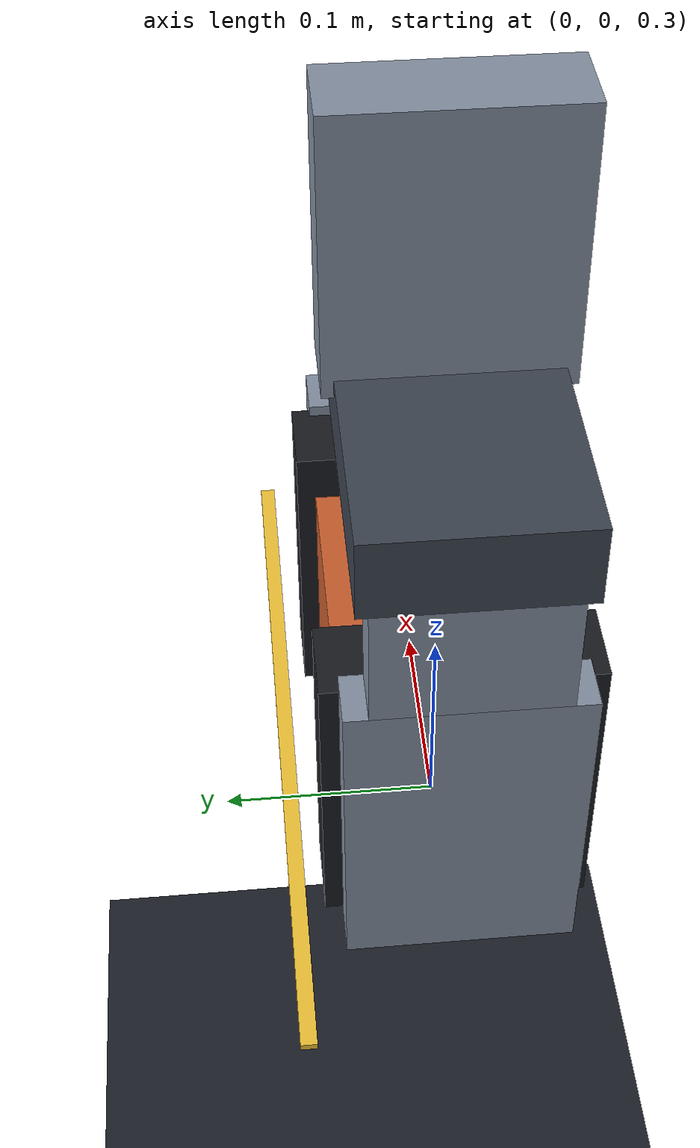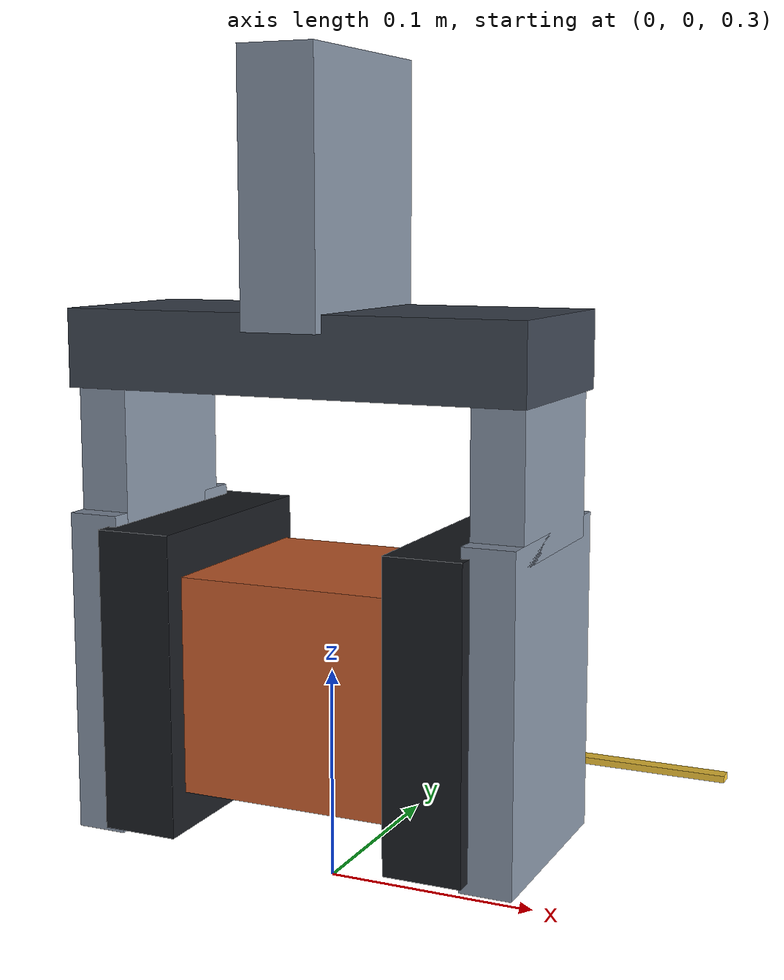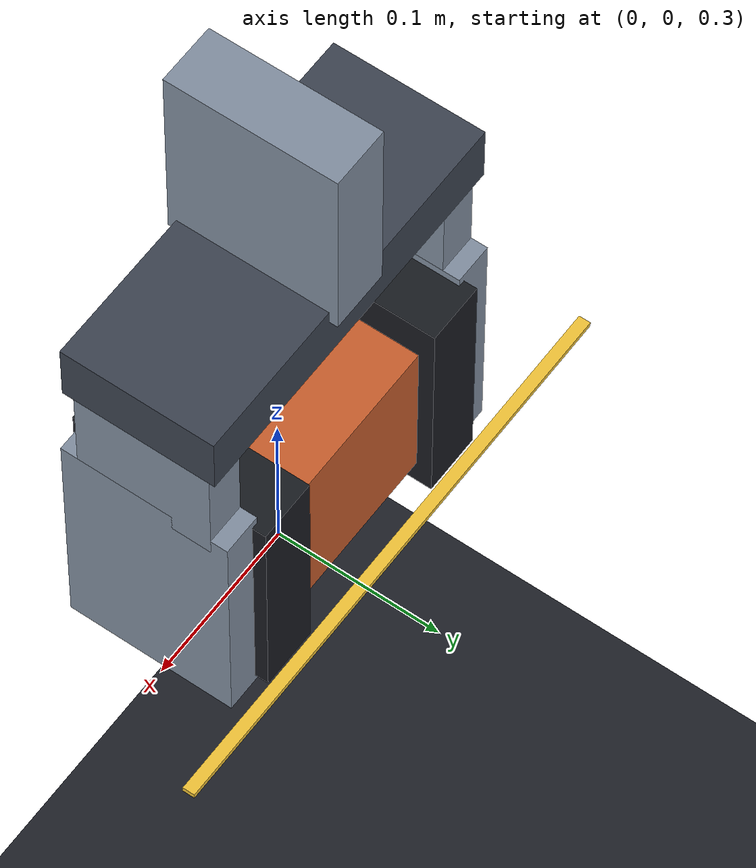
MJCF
<mujoco model="stiction_grasp">
  <option timestep="0.001" cone="elliptic" impratio="0.1">
    <flag stiction="enable"/>
  </option>

  <statistic extent="0.34" center="0 0 0.42" meansize="0.05"/>

  <visual>
    <headlight diffuse="0.35 0.35 0.4" ambient="0.18 0.18 0.22" specular="0.2 0.2 0.2"/>
    <rgba haze="0.06 0.07 0.09 1"/>
    <map fogstart="2" fogend="6" shadowclip="1.2"/>
    <quality shadowsize="8192" offsamples="8"/>
    <global azimuth="120" elevation="-14" offwidth="1920" offheight="1080"/>
    <scale jointlength="0.08" jointwidth="0.008"/>
  </visual>

  <asset>
    <texture name="skybox" type="skybox" builtin="gradient"
             rgb1="0.16 0.20 0.26" rgb2="0.03 0.035 0.05" width="512" height="512"/>
    <texture name="floortex" type="2d" builtin="checker" mark="edge" markrgb="0.10 0.11 0.13"
             rgb1="0.14 0.15 0.18" rgb2="0.10 0.11 0.14" width="512" height="512"/>
    <material name="floor" texture="floortex" texrepeat="14 14" reflectance="0.18"
              shininess="0.3" specular="0.4"/>
    <texture name="boxtex" type="cube" builtin="checker" mark="cross" markrgb="1 1 1"
             rgb1="0.86 0.42 0.20" rgb2="0.74 0.33 0.16" width="256" height="256"/>
    <material name="box" texture="boxtex" texuniform="true" texrepeat="2 2"
              reflectance="0.08" shininess="0.4" specular="0.5"/>
    <material name="metal" rgba="0.52 0.57 0.64 1" reflectance="0.35" shininess="0.85" specular="0.9"/>
    <material name="rubber" rgba="0.10 0.11 0.13 1" reflectance="0.02" shininess="0.1" specular="0.1"/>
    <material name="mount" rgba="0.24 0.27 0.32 1" reflectance="0.15" shininess="0.5" specular="0.5"/>
    <material name="line" rgba="0.96 0.78 0.22 1" emission="0.35"/>
  </asset>

  <worldbody>
    <light pos="0.4 -0.7 1.6" dir="-0.25 0.45 -1" diffuse="0.8 0.78 0.72" specular="0.5 0.5 0.5"
           castshadow="true"/>
    <light pos="-0.8 -0.3 1.0" dir="0.8 0.3 -1" diffuse="0.25 0.28 0.34" castshadow="false"/>
    <geom name="floor" type="plane" size="3 3 .1" pos="0 0 -0.15" material="floor"/>

    <!-- gripper mount + palm (cosmetic, no collisions) -->
    <geom type="box" pos="0 0 0.62" size="0.018 0.05 0.06" material="metal"
          contype="0" conaffinity="0"/>
    <geom type="box" pos="0 0 0.55" size="0.11 0.045 0.018" material="mount"
          contype="0" conaffinity="0"/>

    <!-- fixed reference line at the box's starting bottom edge -->
    <geom name="startline" type="box" size="0.17 0.0035 0.0016" pos="0 0.07 0.35"
          material="line" contype="0" conaffinity="0"/>

    <body name="box" pos="0 0 0.4">
      <freejoint/>
      <geom type="box" size="0.05 0.05 0.05" mass="1" friction="1 0.005 0.0001" material="box"/>
    </body>

    <body name="padL" pos="-0.07 0 0.4">
      <joint name="jL" type="slide" axis="1 0 0"/>
      <!-- rubber gripping pad (functional collision surface) -->
      <geom type="box" size="0.018 0.058 0.07" mass="0.2" friction="1 0.005 0.0001"
            material="rubber"/>
      <!-- cosmetic metal finger + knuckle reaching up to the palm -->
      <geom type="box" pos="-0.026 0 0.0" size="0.012 0.05 0.075" material="metal"
            contype="0" conaffinity="0"/>
      <geom type="box" pos="-0.026 0 0.105" size="0.012 0.04 0.04" material="metal"
            contype="0" conaffinity="0"/>
      <site name="sL" pos="0 0 0" size="0.006"/>
    </body>

    <body name="padR" pos="0.07 0 0.4">
      <joint name="jR" type="slide" axis="1 0 0"/>
      <geom type="box" size="0.018 0.058 0.07" mass="0.2" friction="1 0.005 0.0001"
            material="rubber"/>
      <geom type="box" pos="0.026 0 0.0" size="0.012 0.05 0.075" material="metal"
            contype="0" conaffinity="0"/>
      <geom type="box" pos="0.026 0 0.105" size="0.012 0.04 0.04" material="metal"
            contype="0" conaffinity="0"/>
      <site name="sR" pos="0 0 0" size="0.006"/>
    </body>
  </worldbody>

  <tendon>
    <!-- passive spring tendon pulling the jaws together: tension = stiffness*(length - springlength).
         the box holds the jaw centers ~0.136 apart, so tension ~= 1000*(0.136-0.116) ~ 20 N each. -->
    <spatial stiffness="1000" springlength="0.116" width="0.0035" rgba="0.35 0.72 0.45 1">
      <site site="sL"/>
      <site site="sR"/>
    </spatial>
  </tendon>
</mujoco>
